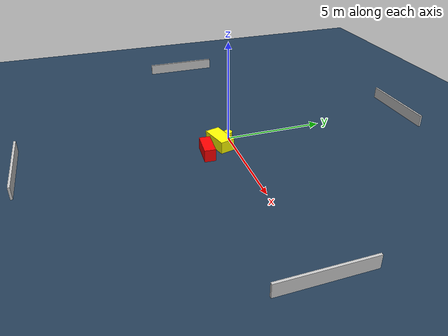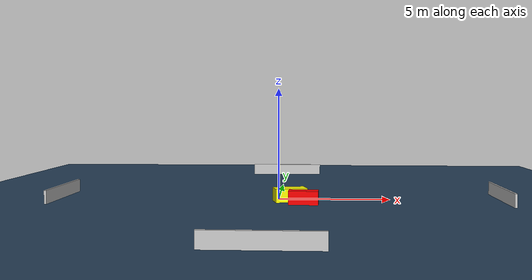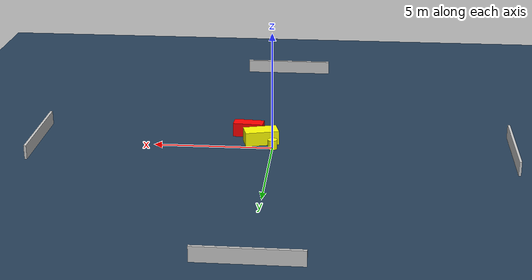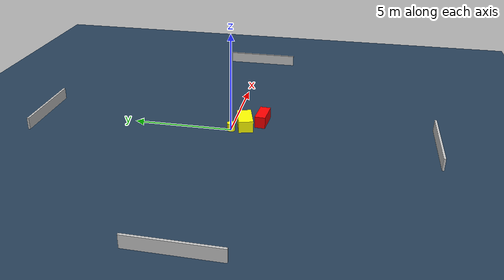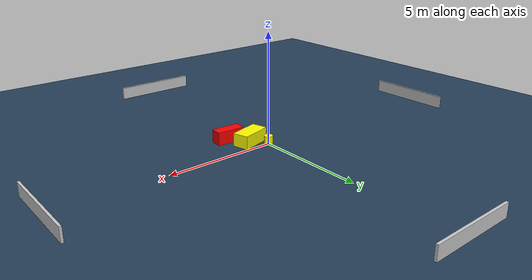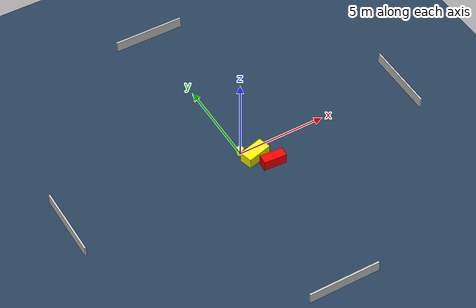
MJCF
<?xml version="1.0" ?>
<mujoco model="generated_environment">
  <option timestep="0.01" integrator="RK4" cone="elliptic"/>
  <default>
    <geom density="1"/>
  </default>
  <asset>
    <texture builtin="gradient" height="3072" name="skybox" rgb1="0.3 0.5 0.7" rgb2="0 0 0" type="skybox" width="512"/>
    <texture builtin="checker" height="300" name="groundplane" rgb1="0.2 0.3 0.4" rgb2="0.1 0.2 0.3" type="2d" width="300"/>
    <material name="groundplane" reflectance="0.2" texrepeat="5 5" texture="groundplane"/>
  </asset>
  <worldbody>
    <light dir="0 0 -1" directional="true" pos="0 0 1.5"/>
    <geom condim="3" friction="0.5 0.005 0.001" material="groundplane" name="floor" pos="0 0 0" size="0 0 0.05" type="plane"/>
    <body name="walls">
      <geom name="wall_1" condim="4" pos="-10.0 0.0 0.3" rgba="0.800000011920929 0.800000011920929 0.800000011920929 1.0" size="0.05 2.0 0.3" type="box"/>
      <geom name="wall_2" condim="4" pos="10.0 0.0 0.3" rgba="0.800000011920929 0.800000011920929 0.800000011920929 1.0" size="0.05 2.0 0.3" type="box"/>
      <geom name="wall_3" condim="4" pos="0.0 -10.0 0.3" rgba="0.800000011920929 0.800000011920929 0.800000011920929 1.0" size="2.0 0.05 0.3" type="box"/>
      <geom name="wall_4" condim="4" pos="0.0 10.0 0.3" rgba="0.800000011920929 0.800000011920929 0.800000011920929 1.0" size="2.0 0.05 0.3" type="box"/>
    </body>
    <body name="robot">
      <joint name="joint_x" type="slide" pos="0 0 0" axis="1 0 0"/>
      <joint name="joint_y" type="slide" pos="0 0 0" axis="0 1 0"/>
      <geom name="robot" type="cylinder" pos="0.0 0.0 0.2" size="0.2 0.2 0.0" mass="5.0" friction="1.0 0.005 0.0001" condim="4" rgba="1.0 1.0 0.0 1.0"/>
    </body>
    <body name="obstacle_1_movable">
      <geom name="obstacle_1_movable" condim="4" pos="0.5410956096734931 -0.6098853922424876 0.3" euler="0 0 194.94143049871664" friction="0.0 0.005 0.001" rgba="1.0 1.0 0.0 1.0" size="0.7118448693468287 0.3649793609726812 0.3" type="box" mass="0.1"/>
      <joint type="free"/>
    </body>
    <body name="obstacle_2_static">
      <geom name="obstacle_2_static" condim="4" pos="1.149498188781906 -1.4255555221313694 0.3" euler="0 0 355.7695707189644" friction="0.0 0.005 0.001" rgba="1.0 0.0 0.0 1.0" size="0.6441777454511602 0.2677919389112234 0.3" type="box"/>
    </body>
  </worldbody>
  <actuator>
    <motor name="actuator_x" joint="joint_x" gear="1" ctrlrange="-1 1"/>
    <motor name="actuator_y" joint="joint_y" gear="1" ctrlrange="-1 1"/>
  </actuator>
</mujoco>
